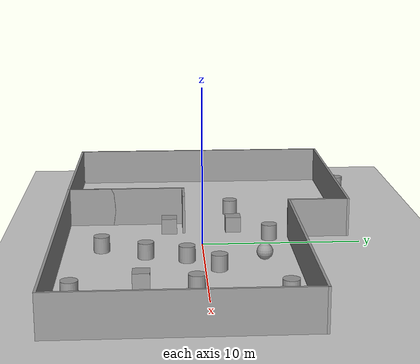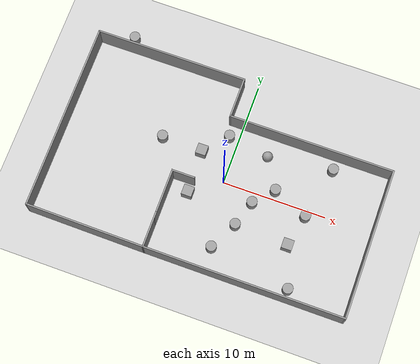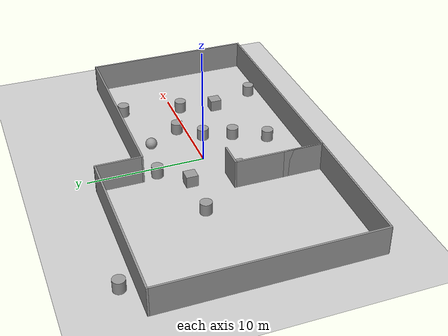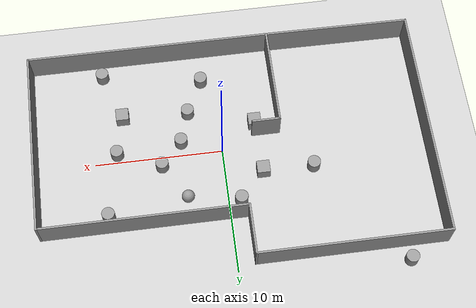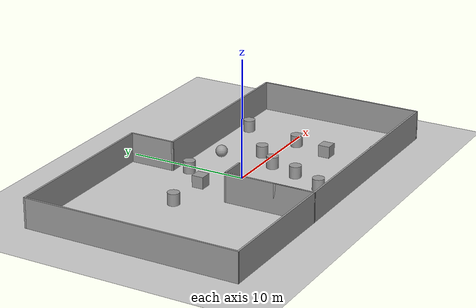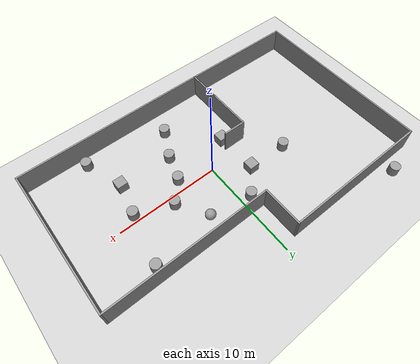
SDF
<sdf version="1.7">
 <world name="default">
  <light name="sun" type="directional">
   <pose>0 0 10 0 -0 0</pose>
   <diffuse>0.8 0.8 0.8 1</diffuse>
   <specular>0.2 0.2 0.2 1</specular>
   <attenuation>
    <range>1000</range>
    <constant>0.9</constant>
    <linear>0.01</linear>
    <quadratic>0.001</quadratic>
   </attenuation>
   <direction>-0.5 0.1 -0.9</direction>
   <spot><inner_angle>0</inner_angle><outer_angle>0</outer_angle><falloff>0</falloff></spot>
  </light>
  <model name="ground_plane">
   <static>1</static>
   <link name="link">
    <collision name="collision">
     <geometry><plane><normal>0 0 1</normal><size>100 100</size></plane></geometry>
     <surface><friction><ode><mu>100</mu><mu2>50</mu2></ode></friction></surface>
    </collision>
    <visual name="visual">
     <cast_shadows>0</cast_shadows>
     <geometry><plane><normal>0 0 1</normal><size>100 100</size></plane></geometry>
     <material>
      <script><uri>file://media/materials/scripts/gazebo.material</uri><name>Gazebo/Grey</name></script>
     </material>
    </visual>
   </link>
  </model>
  <gravity>0 0 -9.8</gravity>
  <magnetic_field>6e-06 2.3e-05 -4.2e-05</magnetic_field>
  <atmosphere type="adiabatic"/>
  <physics type="ode">
   <max_step_size>0.001</max_step_size>
   <real_time_factor>1</real_time_factor>
   <real_time_update_rate>1000</real_time_update_rate>
  </physics>
  <scene><ambient>0.4 0.4 0.4 1</ambient><background>0.7 0.7 0.7 1</background><shadows>1</shadows></scene>
  <spherical_coordinates>
   <surface_model>EARTH_WGS84</surface_model>
   <latitude_deg>0</latitude_deg>
   <longitude_deg>0</longitude_deg>
   <elevation>0</elevation>
   <heading_deg>0</heading_deg>
  </spherical_coordinates>
  <model name="unit_box">
   <pose>-2.91995 2.10937 0.499995 0 1e-05 0</pose>
   <link name="link">
    <inertial>
     <mass>1</mass>
     <inertia>
      <ixx>0.166667</ixx>
      <ixy>0</ixy>
      <ixz>0</ixz>
      <iyy>0.166667</iyy>
      <iyz>0</iyz>
      <izz>0.166667</izz>
     </inertia>
    </inertial>
    <collision name="collision"><geometry><box><size>1 1 1</size></box></geometry></collision>
    <visual name="visual">
     <geometry><box><size>1 1 1</size></box></geometry>
     <material>
      <script><name>Gazebo/Grey</name><uri>file://media/materials/scripts/gazebo.material</uri></script>
     </material>
    </visual>
   </link>
  </model>
  <model name="unit_cylinder">
   <pose>2.3791 -3.54697 0.499992 -3e-06 3e-06 0</pose>
   <link name="link">
    <inertial>
     <mass>1</mass>
     <inertia><ixx>0.145833</ixx><ixy>0</ixy><ixz>0</ixz><iyy>0.145833</iyy><iyz>0</iyz><izz>0.125</izz></inertia>
    </inertial>
    <collision name="collision">
     <geometry><cylinder><radius>0.5</radius><length>1</length></cylinder></geometry>
    </collision>
    <visual name="visual">
     <geometry><cylinder><radius>0.5</radius><length>1</length></cylinder></geometry>
     <material>
      <script><name>Gazebo/Grey</name><uri>file://media/materials/scripts/gazebo.material</uri></script>
     </material>
    </visual>
   </link>
  </model>
  <model name="unit_cylinder_0">
   <pose>3.15504 -1.06269 0.499998 3e-06 -3e-06 0</pose>
   <link name="link">
    <inertial>
     <mass>1</mass>
     <inertia><ixx>0.145833</ixx><ixy>0</ixy><ixz>0</ixz><iyy>0.145833</iyy><iyz>0</iyz><izz>0.125</izz></inertia>
    </inertial>
    <collision name="collision">
     <geometry><cylinder><radius>0.5</radius><length>1</length></cylinder></geometry>
    </collision>
    <visual name="visual">
     <geometry><cylinder><radius>0.5</radius><length>1</length></cylinder></geometry>
     <material>
      <script><name>Gazebo/Grey</name><uri>file://media/materials/scripts/gazebo.material</uri></script>
     </material>
    </visual>
   </link>
  </model>
  <model name="unit_sphere">
   <pose>3.08511 3.64468 0.5 0 -0 0</pose>
   <link name="link">
    <inertial>
     <mass>1</mass>
     <inertia><ixx>0.1</ixx><ixy>0</ixy><ixz>0</ixz><iyy>0.1</iyy><iyz>0</iyz><izz>0.1</izz></inertia>
    </inertial>
    <collision name="collision"><geometry><sphere><radius>0.5</radius></sphere></geometry></collision>
    <visual name="visual">
     <geometry><sphere><radius>0.5</radius></sphere></geometry>
     <material>
      <script><name>Gazebo/Grey</name><uri>file://media/materials/scripts/gazebo.material</uri></script>
     </material>
    </visual>
   </link>
  </model>
  <model name="unit_cylinder_1">
   <pose>8.21408 -0.638057 0.499992 -3e-06 3e-06 0</pose>
   <link name="link">
    <inertial>
     <mass>1</mass>
     <inertia><ixx>0.145833</ixx><ixy>0</ixy><ixz>0</ixz><iyy>0.145833</iyy><iyz>0</iyz><izz>0.125</izz></inertia>
    </inertial>
    <collision name="collision">
     <geometry><cylinder><radius>0.5</radius><length>1</length></cylinder></geometry>
    </collision>
    <visual name="visual">
     <geometry><cylinder><radius>0.5</radius><length>1</length></cylinder></geometry>
     <material>
      <script><name>Gazebo/Grey</name><uri>file://media/materials/scripts/gazebo.material</uri></script>
     </material>
    </visual>
   </link>
  </model>
  <model name="unit_box_0">
   <pose>7.53953 -3.74496 0.499995 -1e-05 -0 -0</pose>
   <link name="link">
    <inertial>
     <mass>1</mass>
     <inertia>
      <ixx>0.166667</ixx>
      <ixy>0</ixy>
      <ixz>0</ixz>
      <iyy>0.166667</iyy>
      <iyz>0</iyz>
      <izz>0.166667</izz>
     </inertia>
    </inertial>
    <collision name="collision"><geometry><box><size>1 1 1</size></box></geometry></collision>
    <visual name="visual">
     <geometry><box><size>1 1 1</size></box></geometry>
     <material>
      <script><name>Gazebo/Grey</name><uri>file://media/materials/scripts/gazebo.material</uri></script>
     </material>
    </visual>
   </link>
  </model>
  <model name="unit_box_1">
   <pose>-2.77934 -2.08218 0.499995 0 1e-05 0</pose>
   <link name="link">
    <inertial>
     <mass>1</mass>
     <inertia>
      <ixx>0.166667</ixx>
      <ixy>0</ixy>
      <ixz>0</ixz>
      <iyy>0.166667</iyy>
      <iyz>0</iyz>
      <izz>0.166667</izz>
     </inertia>
    </inertial>
    <collision name="collision"><geometry><box><size>1 1 1</size></box></geometry></collision>
    <visual name="visual">
     <geometry><box><size>1 1 1</size></box></geometry>
     <material>
      <script><name>Gazebo/Grey</name><uri>file://media/materials/scripts/gazebo.material</uri></script>
     </material>
    </visual>
   </link>
  </model>
  <model name="unit_cylinder_2">
   <pose>4.82003 0.790741 0.499998 3e-06 -4e-06 0</pose>
   <link name="link">
    <inertial>
     <mass>1</mass>
     <inertia><ixx>0.145833</ixx><ixy>0</ixy><ixz>0</ixz><iyy>0.145833</iyy><iyz>0</iyz><izz>0.125</izz></inertia>
    </inertial>
    <collision name="collision">
     <geometry><cylinder><radius>0.5</radius><length>1</length></cylinder></geometry>
    </collision>
    <visual name="visual">
     <geometry><cylinder><radius>0.5</radius><length>1</length></cylinder></geometry>
     <material>
      <script><name>Gazebo/Grey</name><uri>file://media/materials/scripts/gazebo.material</uri></script>
     </material>
    </visual>
   </link>
  </model>
  <model name="unit_cylinder_3">
   <pose>-0.950912 4.32418 0.499992 -3e-06 4e-06 0</pose>
   <link name="link">
    <inertial>
     <mass>1</mass>
     <inertia><ixx>0.145833</ixx><ixy>0</ixy><ixz>0</ixz><iyy>0.145833</iyy><iyz>0</iyz><izz>0.125</izz></inertia>
    </inertial>
    <collision name="collision">
     <geometry><cylinder><radius>0.5</radius><length>1</length></cylinder></geometry>
    </collision>
    <visual name="visual">
     <geometry><cylinder><radius>0.5</radius><length>1</length></cylinder></geometry>
     <material>
      <script><name>Gazebo/Grey</name><uri>file://media/materials/scripts/gazebo.material</uri></script>
     </material>
    </visual>
   </link>
  </model>
  <model name="unit_cylinder_4">
   <pose>-12.9126 10.664 0.499998 3e-06 -4e-06 0</pose>
   <link name="link">
    <inertial>
     <mass>1</mass>
     <inertia><ixx>0.145833</ixx><ixy>0</ixy><ixz>0</ixz><iyy>0.145833</iyy><iyz>0</iyz><izz>0.125</izz></inertia>
    </inertial>
    <collision name="collision">
     <geometry><cylinder><radius>0.5</radius><length>1</length></cylinder></geometry>
    </collision>
    <visual name="visual">
     <geometry><cylinder><radius>0.5</radius><length>1</length></cylinder></geometry>
     <material>
      <script><name>Gazebo/Grey</name><uri>file://media/materials/scripts/gazebo.material</uri></script>
     </material>
    </visual>
   </link>
  </model>
  <model name="unit_cylinder_5">
   <pose>-6.87862 2.18563 0.499992 -3e-06 -4e-06 -0</pose>
   <link name="link">
    <inertial>
     <mass>1</mass>
     <inertia><ixx>0.145833</ixx><ixy>0</ixy><ixz>0</ixz><iyy>0.145833</iyy><iyz>0</iyz><izz>0.125</izz></inertia>
    </inertial>
    <collision name="collision">
     <geometry><cylinder><radius>0.5</radius><length>1</length></cylinder></geometry>
    </collision>
    <visual name="visual">
     <geometry><cylinder><radius>0.5</radius><length>1</length></cylinder></geometry>
     <material>
      <script><name>Gazebo/Grey</name><uri>file://media/materials/scripts/gazebo.material</uri></script>
     </material>
    </visual>
   </link>
  </model>
  <model name="unit_cylinder_6">
   <pose>1.02861 -6.28419 0.499993 -3e-06 -3e-06 -0</pose>
   <link name="link">
    <inertial>
     <mass>1</mass>
     <inertia><ixx>0.145833</ixx><ixy>0</ixy><ixz>0</ixz><iyy>0.145833</iyy><iyz>0</iyz><izz>0.125</izz></inertia>
    </inertial>
    <collision name="collision">
     <geometry><cylinder><radius>0.5</radius><length>1</length></cylinder></geometry>
    </collision>
    <visual name="visual">
     <geometry><cylinder><radius>0.5</radius><length>1</length></cylinder></geometry>
     <material>
      <script><name>Gazebo/Grey</name><uri>file://media/materials/scripts/gazebo.material</uri></script>
     </material>
    </visual>
   </link>
  </model>
  <model name="unit_cylinder_7">
   <pose>8.85449 -7.61615 0.499997 3e-06 4e-06 -0</pose>
   <link name="link">
    <inertial>
     <mass>1</mass>
     <inertia><ixx>0.145833</ixx><ixy>0</ixy><ixz>0</ixz><iyy>0.145833</iyy><iyz>0</iyz><izz>0.125</izz></inertia>
    </inertial>
    <collision name="collision">
     <geometry><cylinder><radius>0.5</radius><length>1</length></cylinder></geometry>
    </collision>
    <visual name="visual">
     <geometry><cylinder><radius>0.5</radius><length>1</length></cylinder></geometry>
     <material>
      <script><name>Gazebo/Grey</name><uri>file://media/materials/scripts/gazebo.material</uri></script>
     </material>
    </visual>
   </link>
  </model>
  <model name="unit_cylinder_8">
   <pose>9.25864 4.46369 0.499993 -3e-06 -4e-06 -0</pose>
   <link name="link">
    <inertial>
     <mass>1</mass>
     <inertia><ixx>0.145833</ixx><ixy>0</ixy><ixz>0</ixz><iyy>0.145833</iyy><iyz>0</iyz><izz>0.125</izz></inertia>
    </inertial>
    <collision name="collision">
     <geometry><cylinder><radius>0.5</radius><length>1</length></cylinder></geometry>
    </collision>
    <visual name="visual">
     <geometry><cylinder><radius>0.5</radius><length>1</length></cylinder></geometry>
     <material>
      <script><name>Gazebo/Grey</name><uri>file://media/materials/scripts/gazebo.material</uri></script>
     </material>
    </visual>
   </link>
  </model>
  <model name="building">
   <pose>-0.735219 0.379673 0 0 -0 0</pose>
   <link name="Wall_1">
    <collision name="Wall_1_Collision">
     <geometry><box><size>2.25 0.15 2.5</size></box></geometry>
     <pose>0 0 1.25 0 -0 0</pose>
    </collision>
    <visual name="Wall_1_Visual">
     <pose>0 0 1.25 0 -0 0</pose>
     <geometry><box><size>2.25 0.15 2.5</size></box></geometry>
     <material>
      <script><uri>file://media/materials/scripts/gazebo.material</uri><name>Gazebo/Grey</name></script>
      <ambient>1 1 1 1</ambient>
     </material>
     <meta><layer>0</layer></meta>
    </visual>
    <pose>-2.82478 -1.49967 0 0 -0 3.14159</pose>
   </link>
   <link name="Wall_10">
    <collision name="Wall_10_Collision">
     <geometry><box><size>3.5 0.15 2.5</size></box></geometry>
     <pose>0 0 1.25 0 -0 0</pose>
    </collision>
    <visual name="Wall_10_Visual">
     <pose>0 0 1.25 0 -0 0</pose>
     <geometry><box><size>3.5 0.15 2.5</size></box></geometry>
     <material>
      <script><uri>file://media/materials/scripts/gazebo.material</uri><name>Gazebo/Grey</name></script>
      <ambient>1 1 1 1</ambient>
     </material>
     <meta><layer>0</layer></meta>
    </visual>
    <pose>-3.87478 -7.42467 0 0 -0 1.5708</pose>
   </link>
   <link name="Wall_2">
    <collision name="Wall_2_Collision">
     <geometry><box><size>7.75 0.15 2.5</size></box></geometry>
     <pose>0 0 1.25 0 -0 0</pose>
    </collision>
    <visual name="Wall_2_Visual">
     <pose>0 0 1.25 0 -0 0</pose>
     <geometry><box><size>7.75 0.15 2.5</size></box></geometry>
     <material>
      <script><uri>file://media/materials/scripts/gazebo.material</uri><name>Gazebo/Grey</name></script>
      <ambient>1 1 1 1</ambient>
     </material>
     <meta><layer>0</layer></meta>
    </visual>
    <pose>-3.87478 -5.29967 0 0 -0 -1.5708</pose>
   </link>
   <link name="Wall_3">
    <collision name="Wall_3_Collision">
     <geometry><box><size>19.25 0.15 2.5</size></box></geometry>
     <pose>0 0 1.25 0 -0 0</pose>
    </collision>
    <visual name="Wall_3_Visual">
     <pose>0 0 1.25 0 -0 0</pose>
     <geometry><box><size>19.25 0.15 2.5</size></box></geometry>
     <material>
      <script><uri>file://media/materials/scripts/gazebo.material</uri><name>Gazebo/Grey</name></script>
      <ambient>1 1 1 1</ambient>
     </material>
     <meta><layer>0</layer></meta>
    </visual>
    <pose>5.67522 -9.09967 0 0 -0 0</pose>
   </link>
   <link name="Wall_4">
    <collision name="Wall_4_Collision">
     <geometry><box><size>14.5 0.15 2.5</size></box></geometry>
     <pose>0 0 1.25 0 -0 0</pose>
    </collision>
    <visual name="Wall_4_Visual">
     <pose>0 0 1.25 0 -0 0</pose>
     <geometry><box><size>14.5 0.15 2.5</size></box></geometry>
     <material>
      <script><uri>file://media/materials/scripts/gazebo.material</uri><name>Gazebo/Grey</name></script>
      <ambient>1 1 1 1</ambient>
     </material>
     <meta><layer>0</layer></meta>
    </visual>
    <pose>15.2252 -1.92467 0 0 -0 1.5708</pose>
   </link>
   <link name="Wall_5">
    <collision name="Wall_5_Collision">
     <geometry><box><size>16 0.15 2.5</size></box></geometry>
     <pose>0 0 1.25 0 -0 0</pose>
    </collision>
    <visual name="Wall_5_Visual">
     <pose>0 0 1.25 0 -0 0</pose>
     <geometry><box><size>16 0.15 2.5</size></box></geometry>
     <material>
      <script><uri>file://media/materials/scripts/gazebo.material</uri><name>Gazebo/Grey</name></script>
      <ambient>1 1 1 1</ambient>
     </material>
     <meta><layer>0</layer></meta>
    </visual>
    <pose>7.30022 5.25033 0 0 -0 3.14159</pose>
   </link>
   <link name="Wall_6">
    <collision name="Wall_6_Collision">
     <geometry><box><size>4 0.15 2.5</size></box></geometry>
     <pose>0 0 1.25 0 -0 0</pose>
    </collision>
    <visual name="Wall_6_Visual">
     <pose>0 0 1.25 0 -0 0</pose>
     <geometry><box><size>4 0.15 2.5</size></box></geometry>
     <material>
      <script><uri>file://media/materials/scripts/gazebo.material</uri><name>Gazebo/Grey</name></script>
      <ambient>1 1 1 1</ambient>
     </material>
     <meta><layer>0</layer></meta>
    </visual>
    <pose>-0.624781 7.17533 0 0 -0 1.5708</pose>
   </link>
   <link name="Wall_7">
    <collision name="Wall_7_Collision">
     <geometry><box><size>14.75 0.15 2.5</size></box></geometry>
     <pose>0 0 1.25 0 -0 0</pose>
    </collision>
    <visual name="Wall_7_Visual">
     <pose>0 0 1.25 0 -0 0</pose>
     <geometry><box><size>14.75 0.15 2.5</size></box></geometry>
     <material>
      <script><uri>file://media/materials/scripts/gazebo.material</uri><name>Gazebo/Grey</name></script>
      <ambient>1 1 1 1</ambient>
     </material>
     <meta><layer>0</layer></meta>
    </visual>
    <pose>-7.92478 9.10033 0 0 -0 3.14159</pose>
   </link>
   <link name="Wall_8">
    <collision name="Wall_8_Collision">
     <geometry><box><size>18.25 0.15 2.5</size></box></geometry>
     <pose>0 0 1.25 0 -0 0</pose>
    </collision>
    <visual name="Wall_8_Visual">
     <pose>0 0 1.25 0 -0 0</pose>
     <geometry><box><size>18.25 0.15 2.5</size></box></geometry>
     <material>
      <script><uri>file://media/materials/scripts/gazebo.material</uri><name>Gazebo/Grey</name></script>
      <ambient>1 1 1 1</ambient>
     </material>
     <meta><layer>0</layer></meta>
    </visual>
    <pose>-15.2248 0.050327 0 0 -0 -1.5708</pose>
   </link>
   <link name="Wall_9">
    <collision name="Wall_9_Collision">
     <geometry><box><size>11.5 0.15 2.5</size></box></geometry>
     <pose>0 0 1.25 0 -0 0</pose>
    </collision>
    <visual name="Wall_9_Visual">
     <pose>0 0 1.25 0 -0 0</pose>
     <geometry><box><size>11.5 0.15 2.5</size></box></geometry>
     <material>
      <script><uri>file://media/materials/scripts/gazebo.material</uri><name>Gazebo/Grey</name></script>
      <ambient>1 1 1 1</ambient>
     </material>
     <meta><layer>0</layer></meta>
    </visual>
    <pose>-9.54978 -9.04967 0 0 -0 -0.00881</pose>
   </link>
   <static>1</static>
  </model>
 </world>
</sdf>
